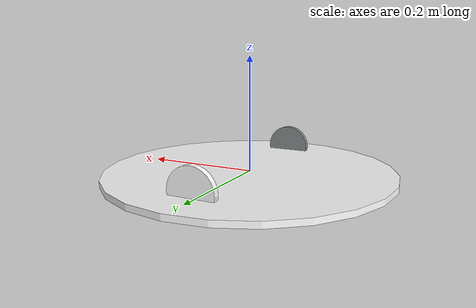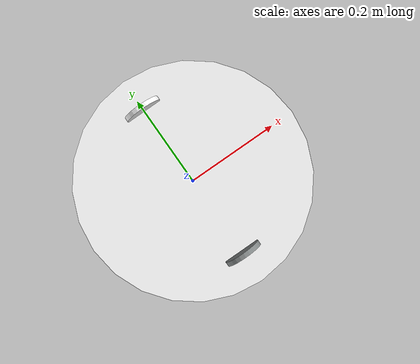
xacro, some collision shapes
<?xml version="1.0" encoding="utf-8"?>
<robot name="plotbot_description" xmlns:xacro="http://www.ros.org/wiki/xacro">

  <xacro:property name="wheel_radius" value="0.04" />
  <xacro:property name="wheel_width" value="0.01" />

  <link name="base_link"></link>

  <link name="chassis_link">
    <inertial>
      <origin xyz="0.1 0.0 0.0" rpy="0 0 0" />
      <mass value="0.558" />
      <inertia ixx="0.0084248" ixy="5.506E-06" ixz="1.2713E-05" iyy="0.018919" iyz="-3.5071E-05" izz="0.012914" />
    </inertial>
    <visual>
      <origin xyz="0.0 0.0 0" rpy="0 0 0" />
      <geometry>
        <mesh filename="package://plotbot_description/meshes/base_link.dae" />
      </geometry>
      <material name="">
        <color rgba="1 1 1 1" />
      </material>
    </visual>
    <collision>
      <origin xyz="0 0 0" rpy="0 0 0" />
      <geometry>
        <cylinder radius="0.25" length="0.01" />
      </geometry>
    </collision>
  </link>

  <link name="right_wheel">
    <inertial>
      <origin xyz="0.0 0.0 0.0" rpy="0 0 0" />
      <mass value="0.034097" />
      <inertia ixx="3.3416E-05" ixy="-1.0543E-10" ixz="1.8488E-11" iyy="1.6974E-05" iyz="-6.6392E-10" izz="1.6941E-05" />
    </inertial>
    <visual>
      <origin xyz="0.0 0.0 0.0" rpy="0  1.5708 0" />
      <geometry>
        <cylinder radius="0.04" length="0.01" />
      </geometry>
      <material name="">
        <color rgba="0.52941 0.54902 0.54902 1" />
      </material>
    </visual>
    <collision>
      <origin xyz="0.0 0.0 0.0" rpy="0  1.5708 0" />
      <geometry>
        <cylinder radius="0.04" length="0.01" />
      </geometry>
    </collision>
  </link>

  <link name="left_wheel">
    <inertial>
      <origin xyz="0.0 0.0 0.0" rpy="0.0 0.0 0.0 " />
      <mass value="0.034097" />
      <inertia ixx="1.6941E-05" ixy="-6.6392E-10" ixz="1.8488E-11" iyy="1.6974E-05" iyz="-1.0543E-10" izz="3.3416E-05" />
    </inertial>
    <visual>
      <origin xyz="0.0 0.0 0.0" rpy="0.0 1.5708  0 " />
      <geometry>
        <cylinder radius="0.04" length="0.01" />
      </geometry>
      <material name="">
        <color rgba="1 1 1 1" />
      </material>
    </visual>
    <collision>
      <origin xyz="0.0 0.0 0.0" rpy="0.0  1.5708 0.0 " />
      <geometry>
        <cylinder radius="0.04" length="0.01" />
      </geometry>
    </collision>
  </link>

  <link name="caster_front_link">
    <visual>
      <origin rpy="1.57079632679 0 0" xyz="0 0.02 0"/>
      <geometry>
        <sphere radius="0.01"/>
      </geometry>
      <material name=""/>
    </visual>
    <collision>
      <geometry>
        <sphere radius="0.01"/>
      </geometry>
      <origin rpy="1.57079632679 0 0" xyz="0 0.02 0"/>
    </collision>
    <inertial>
      <mass value="0.2"/>
      <origin xyz="0 0 0"/>
      <inertia ixx="0.001" ixy="0.0" ixz="0.0" iyy="0.001" iyz="0.0" izz="0.001"/>
    </inertial>
  </link>

  <joint name="base_link_joint" type="fixed">
    <origin xyz="0 0 0" rpy="0 0 0" />
    <parent link="base_link" />
    <child link="chassis_link" />
  </joint>

  <joint name="left_wheel_joint" type="continuous">
    <origin xyz="0.0 0.18 0.012" rpy="1.5708 0 1.5708" />
    <parent link="base_link" />
    <child link="left_wheel" />
    <axis xyz="1 0 0" />
    <limit effort="1000" velocity="100" />
  </joint>

  <joint name="right_wheel_joint" type="continuous">
    <origin xyz="0.0 -0.18 0.012" rpy="1.5708 0 1.5708" />
    <parent link="base_link" />
    <child link="right_wheel" />
    <axis xyz="1 0 0" />
    <limit effort="1000" velocity="100" />
  </joint>

  <joint name="caster_front_joint" type="fixed">
    <parent link="base_link"/>
    <child link="caster_front_link"/>
    <origin rpy="-1.57079632679 0 0" xyz="0.16 0.0 0.0"/>
  </joint>

  <transmission name="left_wheel_trans">
    <type>transmission_interface/SimpleTransmission</type>
    <joint name="left_wheel_joint">
      <hardwareInterface>hardware_interface/VelocityJointInterface</hardwareInterface>
    </joint>
    <actuator name="left_actuator">
      <mechanicalReduction>1</mechanicalReduction>
    </actuator>
  </transmission>

  <transmission name="right_wheel_trans">
    <type>transmission_interface/SimpleTransmission</type>
    <joint name="right_wheel_joint">
      <hardwareInterface>hardware_interface/VelocityJointInterface</hardwareInterface>
    </joint>
    <actuator name="right_actuator">
      <mechanicalReduction>1</mechanicalReduction>
    </actuator>
  </transmission>

  <gazebo reference="right_wheel">
    <mu1 value="1.0"/>
    <mu2 value="1.0"/>
    <kp value="10000000.0"/>
    <kd value="1.0"/>
    <fdir1 value="1 0 0"/>
    <material>Gazebo/Grey</material>
    <turnGravityOff>false</turnGravityOff>
  </gazebo>

  <gazebo reference="left_wheel">
    <mu1 value="1.0"/>
    <mu2 value="1.0"/>
    <kp value="10000000.0"/>
    <kd value="1.0"/>
    <fdir1 value="1 0 0"/>
    <material>Gazebo/Grey</material>
    <turnGravityOff>false</turnGravityOff>
  </gazebo>

  <gazebo reference="caster_front_link">
    <mu1 value="0.0"/>
    <mu2 value="0.0"/>
    <kp value="10000000.0"/>
    <kd value="1.0"/>
    <fdir1 value="1 0 0"/>
    <material>Gazebo/Grey</material>
    <turnGravityOff>false</turnGravityOff>
  </gazebo>

  <gazebo reference="base_link">
    <material>Gazebo/White</material>
    <turnGravityOff>false</turnGravityOff>
  </gazebo>

  <gazebo>
    <plugin name="gazebo_ros_control" filename="libgazebo_ros_control.so">
      <robotNamespace>/</robotNamespace>
    </plugin>
  </gazebo>
</robot>
